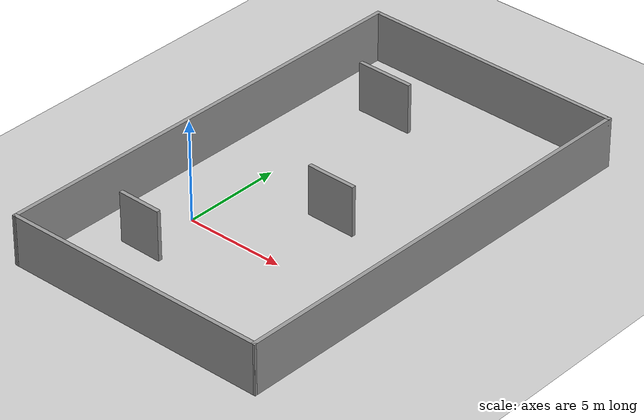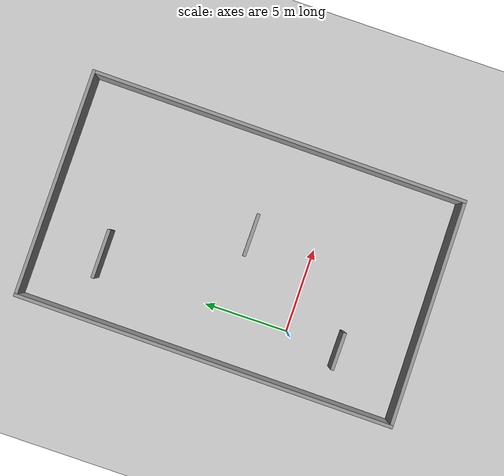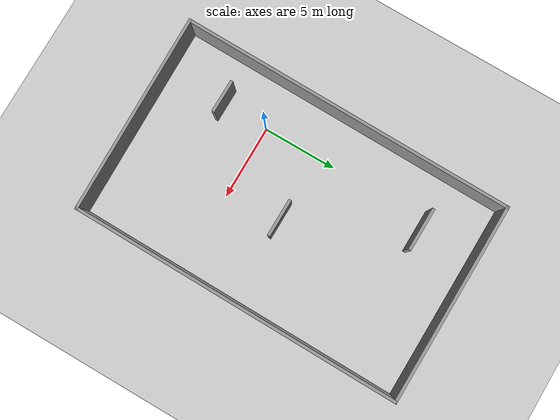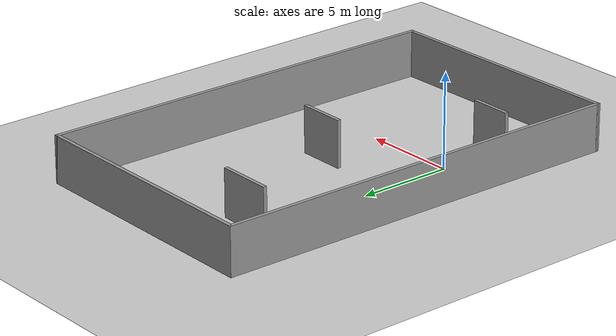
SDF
<sdf version="1.4">
 <world name="default">
  <light name="sun" type="directional">
   <pose>0 0 10 0 -0 0</pose>
   <diffuse>0.8 0.8 0.8 1</diffuse>
   <specular>0.2 0.2 0.2 1</specular>
   <attenuation>
    <range>1000</range>
    <constant>0.9</constant>
    <linear>0.01</linear>
    <quadratic>0.001</quadratic>
   </attenuation>
   <direction>-0.5 0.1 -0.9</direction>
  </light>
  <model name="ground_plane">
   <static>1</static>
   <link name="link">
    <collision name="collision">
     <geometry><plane><normal>0 0 1</normal><size>100 100</size></plane></geometry>
     <surface><friction><ode><mu>100</mu><mu2>50</mu2></ode></friction></surface>
    </collision>
    <visual name="visual">
     <cast_shadows>0</cast_shadows>
     <geometry><plane><normal>0 0 1</normal><size>100 100</size></plane></geometry>
     <material>
      <script><uri>file://media/materials/scripts/gazebo.material</uri><name>Gazebo/Grey</name></script>
     </material>
    </visual>
    <velocity_decay><linear>0</linear><angular>0</angular></velocity_decay>
   </link>
  </model>
  <physics type="ode">
   <max_step_size>0.001</max_step_size>
   <real_time_factor>1</real_time_factor>
   <real_time_update_rate>1000</real_time_update_rate>
   <gravity>0 0 -9.8</gravity>
  </physics>
  <scene><ambient>0.4 0.4 0.4 1</ambient><background>0.7 0.7 0.7 1</background><shadows>1</shadows></scene>
  <model name="simple_wall">
   <link name="Wall_0">
    <collision name="Wall_0_Collision">
     <geometry><box><size>22.7148 0.2 2.5</size></box></geometry>
     <pose>0 0 1.25 0 -0 0</pose>
    </collision>
    <visual name="Wall_0_Visual">
     <pose>0 0 1.25 0 -0 0</pose>
     <geometry><box><size>22.7148 0.2 2.5</size></box></geometry>
     <material>
      <script><uri>file://media/materials/scripts/gazebo.material</uri><name>Gazebo/Grey</name></script>
     </material>
    </visual>
    <velocity_decay><linear>0</linear><angular>0</angular></velocity_decay>
    <pose>5.83738 -1.41 0 0 -0 0</pose>
   </link>
   <link name="Wall_1">
    <collision name="Wall_1_Collision">
     <geometry><box><size>13.5989 0.2 2.5</size></box></geometry>
     <pose>0 0 1.25 0 -0 0</pose>
    </collision>
    <visual name="Wall_1_Visual">
     <pose>0 0 1.25 0 -0 0</pose>
     <geometry><box><size>13.5989 0.2 2.5</size></box></geometry>
     <material>
      <script><uri>file://media/materials/scripts/gazebo.material</uri><name>Gazebo/Grey</name></script>
     </material>
    </visual>
    <velocity_decay><linear>0</linear><angular>0</angular></velocity_decay>
    <pose>17.0948 -8.10947 0 0 0 -1.5708</pose>
   </link>
   <link name="Wall_2">
    <collision name="Wall_2_Collision">
     <geometry><box><size>22.4394 0.2 2.5</size></box></geometry>
     <pose>0 0 1.25 0 -0 0</pose>
    </collision>
    <visual name="Wall_2_Visual">
     <pose>0 0 1.25 0 -0 0</pose>
     <geometry><box><size>22.4394 0.2 2.5</size></box></geometry>
     <material>
      <script><uri>file://media/materials/scripts/gazebo.material</uri><name>Gazebo/Grey</name></script>
     </material>
    </visual>
    <velocity_decay><linear>0</linear><angular>0</angular></velocity_decay>
    <pose>5.97507 -14.8089 0 0 -0 3.14159</pose>
   </link>
   <link name="Wall_3">
    <collision name="Wall_3_Collision">
     <geometry><box><size>13.6018 0.2 2.5</size></box></geometry>
     <pose>0 0 1.25 0 -0 0</pose>
    </collision>
    <visual name="Wall_3_Visual">
     <pose>0 0 1.25 0 -0 0</pose>
     <geometry><box><size>13.6018 0.2 2.5</size></box></geometry>
     <material>
      <script><uri>file://media/materials/scripts/gazebo.material</uri><name>Gazebo/Grey</name></script>
     </material>
    </visual>
    <velocity_decay><linear>0</linear><angular>0</angular></velocity_decay>
    <pose>-5.28231 -8.10947 0 0 -0 1.59135</pose>
   </link>
   <link name="Wall_5">
    <collision name="Wall_5_Collision">
     <geometry><box><size>2.23042 0.2 2.5</size></box></geometry>
     <pose>0 0 1.25 0 -0 0</pose>
    </collision>
    <visual name="Wall_5_Visual">
     <pose>0 0 1.25 0 -0 0</pose>
     <geometry><box><size>2.23042 0.2 2.5</size></box></geometry>
     <material>
      <script><uri>file://media/materials/scripts/gazebo.material</uri><name>Gazebo/Grey</name></script>
     </material>
    </visual>
    <velocity_decay><linear>0</linear><angular>0</angular></velocity_decay>
    <pose>-1.20683 -4.44149 0 0 0 -1.5708</pose>
   </link>
   <link name="Wall_7">
    <collision name="Wall_7_Collision">
     <geometry><box><size>2.53806 0.2 2.5</size></box></geometry>
     <pose>0 0 1.25 0 -0 0</pose>
    </collision>
    <visual name="Wall_7_Visual">
     <pose>0 0 1.25 0 -0 0</pose>
     <geometry><box><size>2.53806 0.2 2.5</size></box></geometry>
     <material>
      <script><uri>file://media/materials/scripts/gazebo.material</uri><name>Gazebo/Grey</name></script>
     </material>
    </visual>
    <velocity_decay><linear>0</linear><angular>0</angular></velocity_decay>
    <pose>5.62276 -9.02532 0 0 0 -1.5708</pose>
   </link>
   <link name="Wall_9">
    <collision name="Wall_9_Collision">
     <geometry><box><size>2.90723 0.2 2.5</size></box></geometry>
     <pose>0 0 1.25 0 -0 0</pose>
    </collision>
    <visual name="Wall_9_Visual">
     <pose>0 0 1.25 0 -0 0</pose>
     <geometry><box><size>2.90723 0.2 2.5</size></box></geometry>
     <material>
      <script><uri>file://media/materials/scripts/gazebo.material</uri><name>Gazebo/Grey</name></script>
     </material>
    </visual>
    <velocity_decay><linear>0</linear><angular>0</angular></velocity_decay>
    <pose>13.3137 -5.21059 0 0 0 -1.5708</pose>
   </link>
   <static>1</static>
   <pose>-4.4409 -1.77693 0 0 -0 1.56</pose>
  </model>
 </world>
</sdf>
